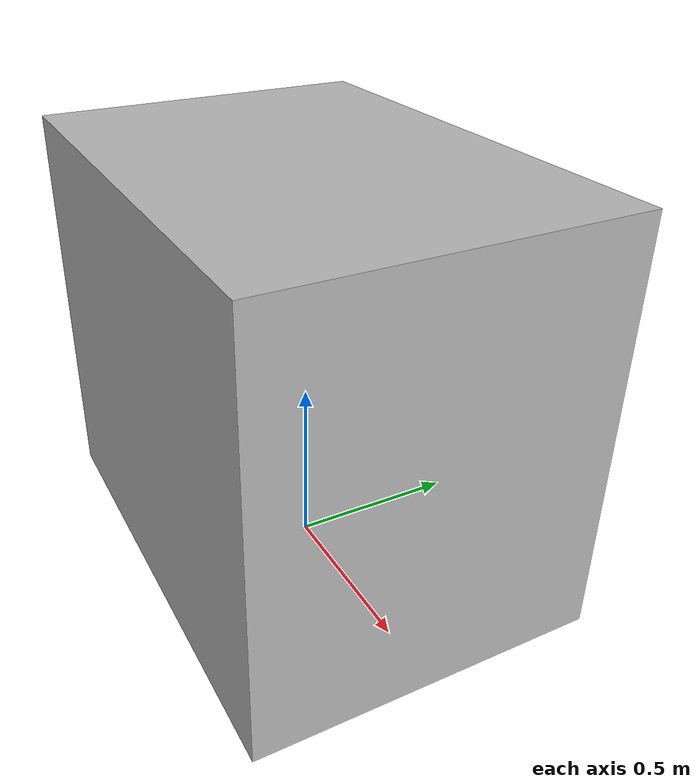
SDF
<?xml version="1.0" ?>
<sdf version="1.5">
    <model name="val_box">
        <link name="link">
            <pose>0 0 0.6 0 0 0</pose>
            <kinematic>true</kinematic>
            <inertial>
                <mass>0.1</mass>
            </inertial>
            <collision name="collision">
            <pose>-0.4 0 0 0 0 0</pose>
                <geometry>
                  <box>
                    <size>1.0 1.0 1.2</size>
                  </box>
                </geometry>
            </collision>
            <collision name="collision2">
                <geometry>
                  <box>
                    <size>1.4 1.0 1.05</size>
                  </box>
                </geometry>
            </collision>
            <visual name="visual">
                <geometry>
                  <box>
                    <size>1.4 1.0 1.2</size>
                  </box>
                </geometry>
            </visual>
        </link>
    </model>
</sdf>
